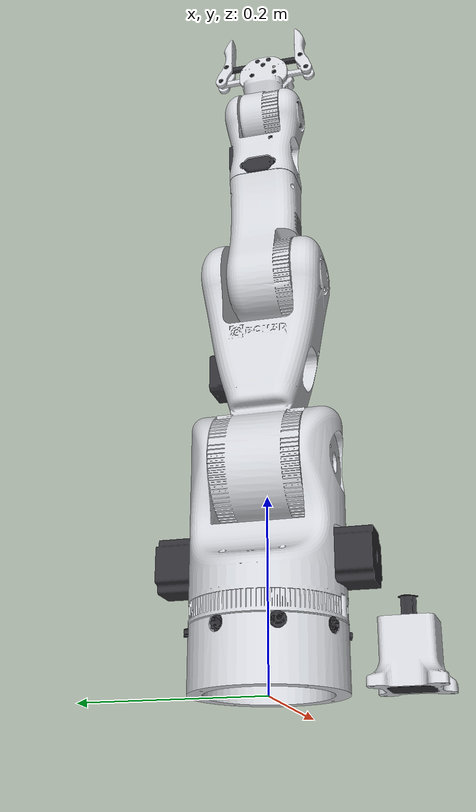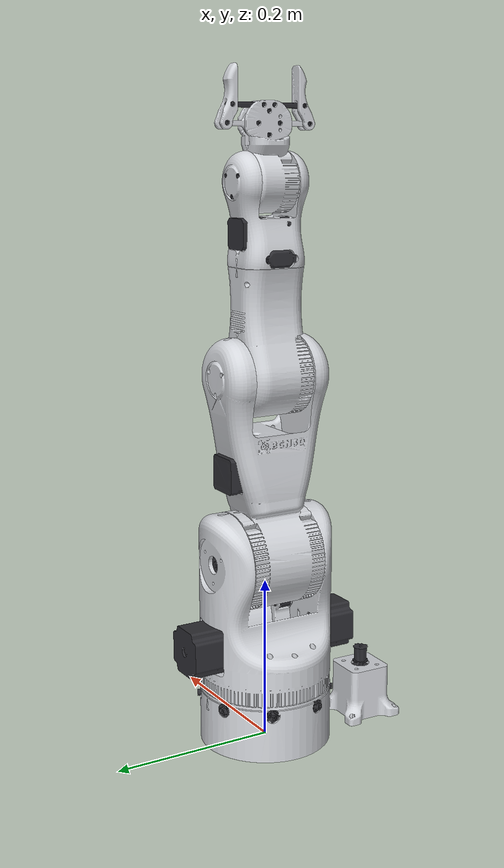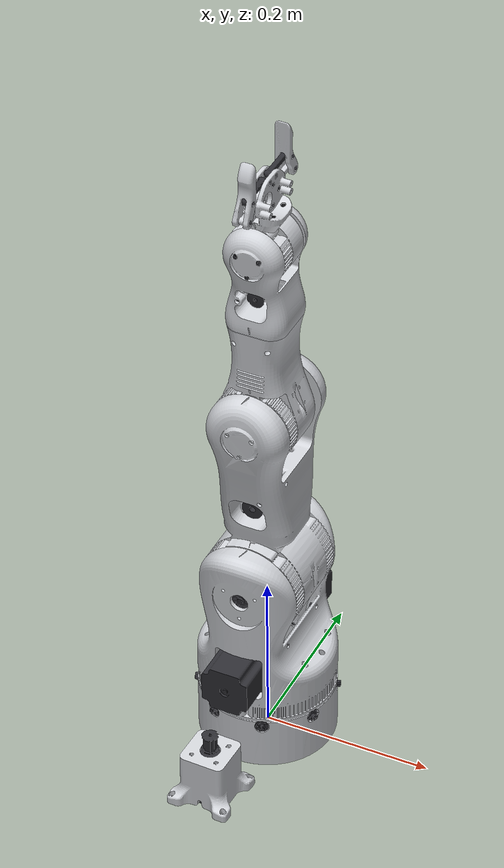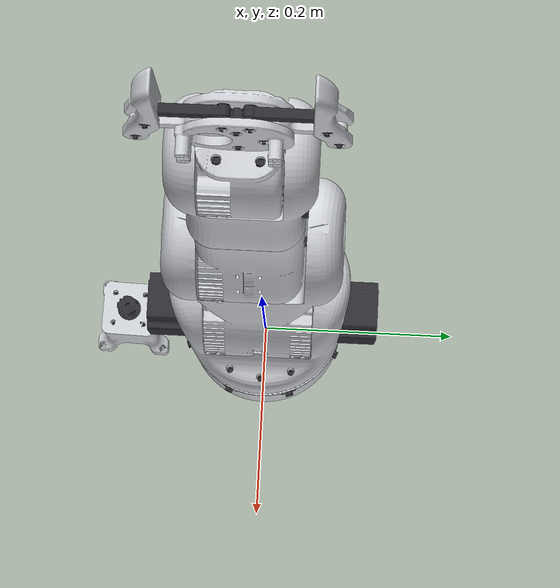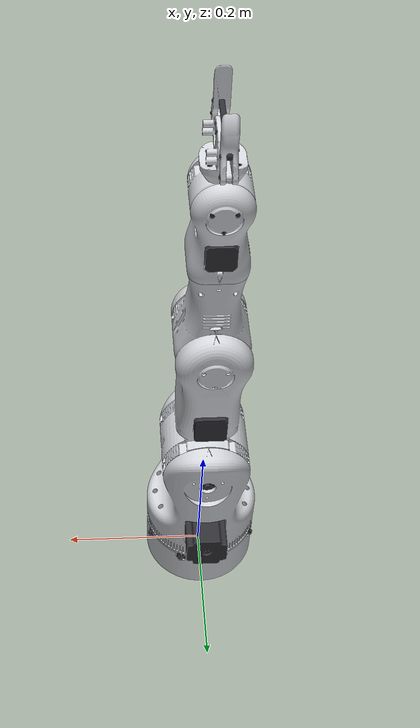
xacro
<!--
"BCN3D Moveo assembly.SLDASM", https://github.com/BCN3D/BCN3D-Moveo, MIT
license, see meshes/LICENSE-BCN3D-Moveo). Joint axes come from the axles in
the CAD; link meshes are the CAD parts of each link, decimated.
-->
<?xml version="1.0"?>
<robot xmlns:xacro="http://www.ros.org/wiki/xacro" name="smartmanipulator_x">

  <xacro:arg name="use_mock_hardware" default="true"/>
  <!-- The electronics box of the original Moveo; off for the SmartFusion2 build. -->
  <xacro:arg name="electronics_box" default="false"/>

  <link name="world"/>

  <joint name="world_fixed" type="fixed">
    <parent link="world"/>
    <child link="base_link"/>
    <origin xyz="0 0 0" rpy="0 0 0"/>
  </joint>

  <link name="base_link">
    <visual>
      <geometry><mesh filename="package://smartmanipulator_x_description/meshes/visual/base_printed.stl" scale="1 1 1"/></geometry>
      <material name="smx_printed"><color rgba="0.82 0.83 0.85 1.0"/></material>
    </visual>
    <visual>
      <geometry><mesh filename="package://smartmanipulator_x_description/meshes/visual/base_hardware.stl" scale="1 1 1"/></geometry>
      <material name="smx_hardware"><color rgba="0.18 0.18 0.20 1.0"/></material>
    </visual>
    <collision>
      <geometry><mesh filename="package://smartmanipulator_x_description/meshes/collision/base.stl" scale="1 1 1"/></geometry>
    </collision>
    <inertial>
      <mass value="2.0"/>
      <inertia ixx="0.001" ixy="0" ixz="0" iyy="0.001" iyz="0" izz="0.001"/>
    </inertial>
  </link>

  <xacro:if value="$(arg electronics_box)">
    <link name="electronics_box">
      <visual>
        <geometry><mesh filename="package://smartmanipulator_x_description/meshes/visual/ebox_printed.stl" scale="1 1 1"/></geometry>
        <material name="smx_printed"><color rgba="0.82 0.83 0.85 1.0"/></material>
      </visual>
      <visual>
        <geometry><mesh filename="package://smartmanipulator_x_description/meshes/visual/ebox_hardware.stl" scale="1 1 1"/></geometry>
        <material name="smx_hardware"><color rgba="0.18 0.18 0.20 1.0"/></material>
      </visual>
      <collision>
        <geometry><mesh filename="package://smartmanipulator_x_description/meshes/collision/ebox.stl" scale="1 1 1"/></geometry>
      </collision>
      <inertial>
        <mass value="1.0"/>
        <inertia ixx="0.001" ixy="0" ixz="0" iyy="0.001" iyz="0" izz="0.001"/>
      </inertial>
    </link>

    <joint name="electronics_box_fixed" type="fixed">
      <parent link="base_link"/>
      <child link="electronics_box"/>
      <origin xyz="0 0 0" rpy="0 0 0"/>
    </joint>
  </xacro:if>

  <!-- J1 base: rotation about the vertical axis -->
  <joint name="j1_base" type="revolute">
    <parent link="base_link"/>
    <child link="link1"/>
    <origin xyz="0 0 0" rpy="0 0 0"/>
    <axis xyz="0 0 1"/>
    <limit lower="${-pi}" upper="${pi}" velocity="1.0" effort="10.0"/>
  </joint>

  <link name="link1">
    <visual>
      <geometry><mesh filename="package://smartmanipulator_x_description/meshes/visual/link1_printed.stl" scale="1 1 1"/></geometry>
      <material name="smx_printed"><color rgba="0.82 0.83 0.85 1.0"/></material>
    </visual>
    <visual>
      <geometry><mesh filename="package://smartmanipulator_x_description/meshes/visual/link1_hardware.stl" scale="1 1 1"/></geometry>
      <material name="smx_hardware"><color rgba="0.18 0.18 0.20 1.0"/></material>
    </visual>
    <collision>
      <geometry><mesh filename="package://smartmanipulator_x_description/meshes/collision/link1.stl" scale="1 1 1"/></geometry>
    </collision>
    <inertial>
      <mass value="1.0"/>
      <inertia ixx="0.001" ixy="0" ixz="0" iyy="0.001" iyz="0" izz="0.001"/>
    </inertial>
  </link>

  <!-- J2 shoulder: two mirrored motors (DYNAMIXEL IDs 2 and 3); + tilts the arm forward -->
  <joint name="j2_shoulder" type="revolute">
    <parent link="link1"/>
    <child link="link2"/>
    <origin xyz="0 0 0.23164" rpy="0 0 0"/>
    <axis xyz="0 1 0"/>
    <limit lower="${-pi/2}" upper="${pi/2}" velocity="1.0" effort="10.0"/>
  </joint>

  <link name="link2">
    <visual>
      <geometry><mesh filename="package://smartmanipulator_x_description/meshes/visual/link2_printed.stl" scale="1 1 1"/></geometry>
      <material name="smx_printed"><color rgba="0.82 0.83 0.85 1.0"/></material>
    </visual>
    <visual>
      <geometry><mesh filename="package://smartmanipulator_x_description/meshes/visual/link2_hardware.stl" scale="1 1 1"/></geometry>
      <material name="smx_hardware"><color rgba="0.18 0.18 0.20 1.0"/></material>
    </visual>
    <collision>
      <geometry><mesh filename="package://smartmanipulator_x_description/meshes/collision/link2.stl" scale="1 1 1"/></geometry>
    </collision>
    <inertial>
      <mass value="0.8"/>
      <inertia ixx="0.001" ixy="0" ixz="0" iyy="0.001" iyz="0" izz="0.001"/>
    </inertial>
  </link>

  <!-- J3 elbow: + bends forward -->
  <joint name="j3_elbow" type="revolute">
    <parent link="link2"/>
    <child link="link3"/>
    <origin xyz="0 0 0.22112" rpy="0 0 0"/>
    <axis xyz="0 1 0"/>
    <limit lower="${-pi/2}" upper="${pi/2}" velocity="1.0" effort="10.0"/>
  </joint>

  <link name="link3">
    <visual>
      <geometry><mesh filename="package://smartmanipulator_x_description/meshes/visual/link3_printed.stl" scale="1 1 1"/></geometry>
      <material name="smx_printed"><color rgba="0.82 0.83 0.85 1.0"/></material>
    </visual>
    <visual>
      <geometry><mesh filename="package://smartmanipulator_x_description/meshes/visual/link3_hardware.stl" scale="1 1 1"/></geometry>
      <material name="smx_hardware"><color rgba="0.18 0.18 0.20 1.0"/></material>
    </visual>
    <collision>
      <geometry><mesh filename="package://smartmanipulator_x_description/meshes/collision/link3.stl" scale="1 1 1"/></geometry>
    </collision>
    <inertial>
      <mass value="0.4"/>
      <inertia ixx="0.001" ixy="0" ixz="0" iyy="0.001" iyz="0" izz="0.001"/>
    </inertial>
  </link>

  <!-- J4 forearm roll -->
  <joint name="j4_forearm_roll" type="revolute">
    <parent link="link3"/>
    <child link="link4"/>
    <origin xyz="0 0 0.09609" rpy="0 0 0"/>
    <axis xyz="0 0 1"/>
    <limit lower="${-pi}" upper="${pi}" velocity="1.0" effort="5.0"/>
  </joint>

  <link name="link4">
    <visual>
      <geometry><mesh filename="package://smartmanipulator_x_description/meshes/visual/link4_printed.stl" scale="1 1 1"/></geometry>
      <material name="smx_printed"><color rgba="0.82 0.83 0.85 1.0"/></material>
    </visual>
    <visual>
      <geometry><mesh filename="package://smartmanipulator_x_description/meshes/visual/link4_hardware.stl" scale="1 1 1"/></geometry>
      <material name="smx_hardware"><color rgba="0.18 0.18 0.20 1.0"/></material>
    </visual>
    <collision>
      <geometry><mesh filename="package://smartmanipulator_x_description/meshes/collision/link4.stl" scale="1 1 1"/></geometry>
    </collision>
    <inertial>
      <mass value="0.3"/>
      <inertia ixx="0.001" ixy="0" ixz="0" iyy="0.001" iyz="0" izz="0.001"/>
    </inertial>
  </link>

  <!-- J5 wrist pitch: + bends forward -->
  <joint name="j5_wrist" type="revolute">
    <parent link="link4"/>
    <child link="link5"/>
    <origin xyz="0 0 0.12691" rpy="0 0 0"/>
    <axis xyz="0 1 0"/>
    <limit lower="${-pi/2}" upper="${pi/2}" velocity="1.0" effort="5.0"/>
  </joint>

  <link name="link5">
    <visual>
      <geometry><mesh filename="package://smartmanipulator_x_description/meshes/visual/link5_printed.stl" scale="1 1 1"/></geometry>
      <material name="smx_printed"><color rgba="0.82 0.83 0.85 1.0"/></material>
    </visual>
    <visual>
      <geometry><mesh filename="package://smartmanipulator_x_description/meshes/visual/link5_hardware.stl" scale="1 1 1"/></geometry>
      <material name="smx_hardware"><color rgba="0.18 0.18 0.20 1.0"/></material>
    </visual>
    <collision>
      <geometry><mesh filename="package://smartmanipulator_x_description/meshes/collision/link5.stl" scale="1 1 1"/></geometry>
    </collision>
    <inertial>
      <mass value="0.2"/>
      <inertia ixx="0.001" ixy="0" ixz="0" iyy="0.001" iyz="0" izz="0.001"/>
    </inertial>
  </link>

  <joint name="gripper" type="revolute">
    <parent link="link5"/>
    <child link="servo_gear"/>
    <origin xyz="0.00047 -0.014 0.065" rpy="0 0 0"/>
    <axis xyz="-1 0 0"/>
    <limit lower="0" upper="1.45" velocity="1.0" effort="2.0"/>
  </joint>

  <link name="servo_gear">
    <visual>
      <geometry><mesh filename="package://smartmanipulator_x_description/meshes/visual/servo_gear_printed.stl" scale="1 1 1"/></geometry>
      <material name="smx_printed"><color rgba="0.82 0.83 0.85 1.0"/></material>
    </visual>
    <collision>
      <geometry><mesh filename="package://smartmanipulator_x_description/meshes/collision/servo_gear.stl" scale="1 1 1"/></geometry>
    </collision>
    <inertial>
      <mass value="0.02"/>
      <inertia ixx="0.001" ixy="0" ixz="0" iyy="0.001" iyz="0" izz="0.001"/>
    </inertial>
  </link>

  <joint name="gripper_idler_gear" type="revolute">
    <parent link="link5"/>
    <child link="idler_gear"/>
    <origin xyz="0.00043 0.014 0.065" rpy="0 0 0"/>
    <axis xyz="-1 0 0"/>
    <limit lower="-1.45" upper="0" velocity="1.0" effort="2.0"/>
    <mimic joint="gripper" multiplier="-1" offset="0"/>
  </joint>

  <link name="idler_gear">
    <visual>
      <geometry><mesh filename="package://smartmanipulator_x_description/meshes/visual/idler_gear_printed.stl" scale="1 1 1"/></geometry>
      <material name="smx_printed"><color rgba="0.82 0.83 0.85 1.0"/></material>
    </visual>
    <visual>
      <geometry><mesh filename="package://smartmanipulator_x_description/meshes/visual/idler_gear_hardware.stl" scale="1 1 1"/></geometry>
      <material name="smx_hardware"><color rgba="0.18 0.18 0.20 1.0"/></material>
    </visual>
    <collision>
      <geometry><mesh filename="package://smartmanipulator_x_description/meshes/collision/idler_gear.stl" scale="1 1 1"/></geometry>
    </collision>
    <inertial>
      <mass value="0.02"/>
      <inertia ixx="0.001" ixy="0" ixz="0" iyy="0.001" iyz="0" izz="0.001"/>
    </inertial>
  </link>

  <joint name="gripper_pivot_right" type="revolute">
    <parent link="link5"/>
    <child link="pivot_right"/>
    <origin xyz="0.00054 -0.007 0.085" rpy="0 0 0"/>
    <axis xyz="-1 0 0"/>
    <limit lower="0" upper="1.45" velocity="1.0" effort="2.0"/>
    <mimic joint="gripper" multiplier="1" offset="0"/>
  </joint>

  <link name="pivot_right">
    <visual>
      <geometry><mesh filename="package://smartmanipulator_x_description/meshes/visual/pivot_right_hardware.stl" scale="1 1 1"/></geometry>
      <material name="smx_hardware"><color rgba="0.18 0.18 0.20 1.0"/></material>
    </visual>
    <collision>
      <geometry><mesh filename="package://smartmanipulator_x_description/meshes/collision/pivot_right.stl" scale="1 1 1"/></geometry>
    </collision>
    <inertial>
      <mass value="0.01"/>
      <inertia ixx="0.001" ixy="0" ixz="0" iyy="0.001" iyz="0" izz="0.001"/>
    </inertial>
  </link>

  <joint name="gripper_pivot_left" type="revolute">
    <parent link="link5"/>
    <child link="pivot_left"/>
    <origin xyz="0.00055 0.00701 0.085" rpy="0 0 0"/>
    <axis xyz="-1 0 0"/>
    <limit lower="-1.45" upper="0" velocity="1.0" effort="2.0"/>
    <mimic joint="gripper" multiplier="-1" offset="0"/>
  </joint>

  <link name="pivot_left">
    <visual>
      <geometry><mesh filename="package://smartmanipulator_x_description/meshes/visual/pivot_left_hardware.stl" scale="1 1 1"/></geometry>
      <material name="smx_hardware"><color rgba="0.18 0.18 0.20 1.0"/></material>
    </visual>
    <collision>
      <geometry><mesh filename="package://smartmanipulator_x_description/meshes/collision/pivot_left.stl" scale="1 1 1"/></geometry>
    </collision>
    <inertial>
      <mass value="0.01"/>
      <inertia ixx="0.001" ixy="0" ixz="0" iyy="0.001" iyz="0" izz="0.001"/>
    </inertial>
  </link>

  <joint name="gripper_finger_right" type="revolute">
    <parent link="servo_gear"/>
    <child link="finger_right"/>
    <origin xyz="-0.00004 -0.04 -0.00056" rpy="0 0 0"/>
    <axis xyz="-1 0 0"/>
    <limit lower="-1.45" upper="0" velocity="1.0" effort="2.0"/>
    <mimic joint="gripper" multiplier="-1" offset="0"/>
  </joint>

  <link name="finger_right">
    <visual>
      <geometry><mesh filename="package://smartmanipulator_x_description/meshes/visual/finger_right_printed.stl" scale="1 1 1"/></geometry>
      <material name="smx_printed"><color rgba="0.82 0.83 0.85 1.0"/></material>
    </visual>
    <visual>
      <geometry><mesh filename="package://smartmanipulator_x_description/meshes/visual/finger_right_hardware.stl" scale="1 1 1"/></geometry>
      <material name="smx_hardware"><color rgba="0.18 0.18 0.20 1.0"/></material>
    </visual>
    <collision>
      <geometry><mesh filename="package://smartmanipulator_x_description/meshes/collision/finger_right.stl" scale="1 1 1"/></geometry>
    </collision>
    <inertial>
      <mass value="0.02"/>
      <inertia ixx="0.001" ixy="0" ixz="0" iyy="0.001" iyz="0" izz="0.001"/>
    </inertial>
  </link>

  <joint name="gripper_finger_left" type="revolute">
    <parent link="idler_gear"/>
    <child link="finger_left"/>
    <origin xyz="-0.00003 0.04 0" rpy="0 0 0"/>
    <axis xyz="-1 0 0"/>
    <limit lower="0" upper="1.45" velocity="1.0" effort="2.0"/>
    <mimic joint="gripper" multiplier="1" offset="0"/>
  </joint>

  <link name="finger_left">
    <visual>
      <geometry><mesh filename="package://smartmanipulator_x_description/meshes/visual/finger_left_printed.stl" scale="1 1 1"/></geometry>
      <material name="smx_printed"><color rgba="0.82 0.83 0.85 1.0"/></material>
    </visual>
    <visual>
      <geometry><mesh filename="package://smartmanipulator_x_description/meshes/visual/finger_left_hardware.stl" scale="1 1 1"/></geometry>
      <material name="smx_hardware"><color rgba="0.18 0.18 0.20 1.0"/></material>
    </visual>
    <collision>
      <geometry><mesh filename="package://smartmanipulator_x_description/meshes/collision/finger_left.stl" scale="1 1 1"/></geometry>
    </collision>
    <inertial>
      <mass value="0.02"/>
      <inertia ixx="0.001" ixy="0" ixz="0" iyy="0.001" iyz="0" izz="0.001"/>
    </inertial>
  </link>

  <!-- Tool point between the fingertips of the closed gripper -->
  <joint name="tool_fixed" type="fixed">
    <parent link="link5"/>
    <child link="tool_link"/>
    <origin xyz="0 0 0.15" rpy="0 0 0"/>
  </joint>

  <link name="tool_link"/>

  <xacro:include filename="$(find smartmanipulator_x_description)/urdf/smartmanipulator_x.ros2_control.xacro"/>
  <xacro:smartmanipulator_x_ros2_control use_mock_hardware="$(arg use_mock_hardware)"/>

</robot>
